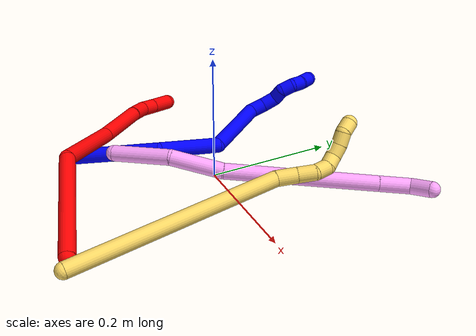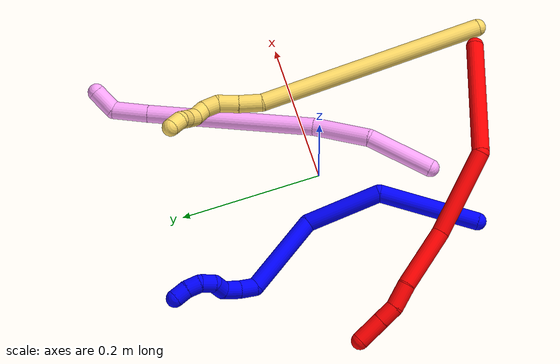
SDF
<sdf version="1.7">
 <world name="default">
  <model name="1">
   <static>0</static>
   <link name="1">
    <collision name="collision-cylinder-e_1_1_4">
     <pose>0.03858 0.059249 -0.010072 -1.73918 0.570685 -0.668755</pose>
     <geometry><cylinder><radius>0.0125</radius><length>0.142832</length></cylinder></geometry>
     <surface>
      <friction><ode><mu>1.16</mu><mu2>1.16</mu2><slip1>0</slip1><slip2>0</slip2></ode></friction>
      <contact><ode><kp>1e+06</kp><kd>1</kd><max_vel>0</max_vel><min_depth>0.001</min_depth></ode></contact>
     </surface>
    </collision>
    <visual name="visual-cylinder-e_1_1_4">
     <pose>0.03858 0.059249 -0.010072 -1.73918 0.570685 -0.668755</pose>
     <geometry><cylinder><radius>0.0125</radius><length>0.142832</length></cylinder></geometry>
     <material><ambient>0 0 1 1</ambient></material>
    </visual>
    <collision name="collision-cylinder-e_2_4_5">
     <pose>0.073314 0.167824 -0.041856 -1.98546 -0.071234 0.109124</pose>
     <geometry><cylinder><radius>0.0125</radius><length>0.108061</length></cylinder></geometry>
     <surface>
      <friction><ode><mu>1.16</mu><mu2>1.16</mu2><slip1>0</slip1><slip2>0</slip2></ode></friction>
      <contact><ode><kp>1e+06</kp><kd>1</kd><max_vel>0</max_vel><min_depth>0.001</min_depth></ode></contact>
     </surface>
    </collision>
    <visual name="visual-cylinder-e_2_4_5">
     <pose>0.073314 0.167824 -0.041856 -1.98546 -0.071234 0.109124</pose>
     <geometry><cylinder><radius>0.0125</radius><length>0.108061</length></cylinder></geometry>
     <material><ambient>0 0 1 1</ambient></material>
    </visual>
    <collision name="collision-cylinder-e_3_5_6">
     <pose>0.036352 0.267086 -0.064989 -1.59923 -0.585385 0.601286</pose>
     <geometry><cylinder><radius>0.0125</radius><length>0.119873</length></cylinder></geometry>
     <surface>
      <friction><ode><mu>1.16</mu><mu2>1.16</mu2><slip1>0</slip1><slip2>0</slip2></ode></friction>
      <contact><ode><kp>1e+06</kp><kd>1</kd><max_vel>0</max_vel><min_depth>0.001</min_depth></ode></contact>
     </surface>
    </collision>
    <visual name="visual-cylinder-e_3_5_6">
     <pose>0.036352 0.267086 -0.064989 -1.59923 -0.585385 0.601286</pose>
     <geometry><cylinder><radius>0.0125</radius><length>0.119873</length></cylinder></geometry>
     <material><ambient>0 0 1 1</ambient></material>
    </visual>
    <collision name="collision-cylinder-e_4_6_7">
     <pose>0.004294 0.329026 -0.065985 -1.53545 0.087856 -0.084808</pose>
     <geometry><cylinder><radius>0.0125</radius><length>0.024114</length></cylinder></geometry>
     <surface>
      <friction><ode><mu>1.16</mu><mu2>1.16</mu2><slip1>0</slip1><slip2>0</slip2></ode></friction>
      <contact><ode><kp>1e+06</kp><kd>1</kd><max_vel>0</max_vel><min_depth>0.001</min_depth></ode></contact>
     </surface>
    </collision>
    <visual name="visual-cylinder-e_4_6_7">
     <pose>0.004294 0.329026 -0.065985 -1.53545 0.087856 -0.084808</pose>
     <geometry><cylinder><radius>0.0125</radius><length>0.024114</length></cylinder></geometry>
     <material><ambient>0 0 1 1</ambient></material>
    </visual>
    <collision name="collision-cylinder-e_5_7_8">
     <pose>0.007818 0.352683 -0.063542 -1.39923 0.205559 -0.173183</pose>
     <geometry><cylinder><radius>0.0125</radius><length>0.024163</length></cylinder></geometry>
     <surface>
      <friction><ode><mu>1.16</mu><mu2>1.16</mu2><slip1>0</slip1><slip2>0</slip2></ode></friction>
      <contact><ode><kp>1e+06</kp><kd>1</kd><max_vel>0</max_vel><min_depth>0.001</min_depth></ode></contact>
     </surface>
    </collision>
    <visual name="visual-cylinder-e_5_7_8">
     <pose>0.007818 0.352683 -0.063542 -1.39923 0.205559 -0.173183</pose>
     <geometry><cylinder><radius>0.0125</radius><length>0.024163</length></cylinder></geometry>
     <material><ambient>0 0 1 1</ambient></material>
    </visual>
    <collision name="collision-cylinder-e_6_8_9">
     <pose>0.015301 0.370612 -0.055223 -0.783511 0.513722 -0.216171</pose>
     <geometry><cylinder><radius>0.0125</radius><length>0.02042</length></cylinder></geometry>
     <surface>
      <friction><ode><mu>1.16</mu><mu2>1.16</mu2><slip1>0</slip1><slip2>0</slip2></ode></friction>
      <contact><ode><kp>1e+06</kp><kd>1</kd><max_vel>0</max_vel><min_depth>0.001</min_depth></ode></contact>
     </surface>
    </collision>
    <visual name="visual-cylinder-e_6_8_9">
     <pose>0.015301 0.370612 -0.055223 -0.783511 0.513722 -0.216171</pose>
     <geometry><cylinder><radius>0.0125</radius><length>0.02042</length></cylinder></geometry>
     <material><ambient>0 0 1 1</ambient></material>
    </visual>
    <collision name="collision-cylinder-e_7_9_10">
     <pose>0.022918 0.386686 -0.04778 -1.45462 0.257658 -0.229601</pose>
     <geometry><cylinder><radius>0.0125</radius><length>0.020403</length></cylinder></geometry>
     <surface>
      <friction><ode><mu>1.16</mu><mu2>1.16</mu2><slip1>0</slip1><slip2>0</slip2></ode></friction>
      <contact><ode><kp>1e+06</kp><kd>1</kd><max_vel>0</max_vel><min_depth>0.001</min_depth></ode></contact>
     </surface>
    </collision>
    <visual name="visual-cylinder-e_7_9_10">
     <pose>0.022918 0.386686 -0.04778 -1.45462 0.257658 -0.229601</pose>
     <geometry><cylinder><radius>0.0125</radius><length>0.020403</length></cylinder></geometry>
     <material><ambient>0 0 1 1</ambient></material>
    </visual>
    <collision name="collision-cylinder-e_8_10_11">
     <pose>0.02429 0.406234 -0.048506 -1.7602 -0.122978 0.148705</pose>
     <geometry><cylinder><radius>0.0125</radius><length>0.020006</length></cylinder></geometry>
     <surface>
      <friction><ode><mu>1.16</mu><mu2>1.16</mu2><slip1>0</slip1><slip2>0</slip2></ode></friction>
      <contact><ode><kp>1e+06</kp><kd>1</kd><max_vel>0</max_vel><min_depth>0.001</min_depth></ode></contact>
     </surface>
    </collision>
    <visual name="visual-cylinder-e_8_10_11">
     <pose>0.02429 0.406234 -0.048506 -1.7602 -0.122978 0.148705</pose>
     <geometry><cylinder><radius>0.0125</radius><length>0.020006</length></cylinder></geometry>
     <material><ambient>0 0 1 1</ambient></material>
    </visual>
    <collision name="collision-cylinder-e_9_11_2">
     <pose>0.019365 0.425211 -0.051946 -1.73952 -0.376262 0.443686</pose>
     <geometry><cylinder><radius>0.0125</radius><length>0.020129</length></cylinder></geometry>
     <surface>
      <friction><ode><mu>1.16</mu><mu2>1.16</mu2><slip1>0</slip1><slip2>0</slip2></ode></friction>
      <contact><ode><kp>1e+06</kp><kd>1</kd><max_vel>0</max_vel><min_depth>0.001</min_depth></ode></contact>
     </surface>
    </collision>
    <visual name="visual-cylinder-e_9_11_2">
     <pose>0.019365 0.425211 -0.051946 -1.73952 -0.376262 0.443686</pose>
     <geometry><cylinder><radius>0.0125</radius><length>0.020129</length></cylinder></geometry>
     <material><ambient>0 0 1 1</ambient></material>
    </visual>
    <collision name="collision-sphere-2">
     <pose>0.015667 0.434439 -0.053518 0 -0 0</pose>
     <geometry><sphere><radius>0.0125</radius></sphere></geometry>
     <surface>
      <friction><ode><mu>1.16</mu><mu2>1.16</mu2><slip1>0</slip1><slip2>0</slip2></ode></friction>
      <contact><ode><kp>1e+06</kp><kd>1</kd><max_vel>0</max_vel><min_depth>0.001</min_depth></ode></contact>
     </surface>
    </collision>
    <visual name="visual-sphere-2">
     <pose>0.015667 0.434439 -0.053518 0 -0 0</pose>
     <geometry><sphere><radius>0.0125</radius></sphere></geometry>
     <material><ambient>0 0 1 1</ambient></material>
    </visual>
    <collision name="collision-sphere-11">
     <pose>0.023063 0.415984 -0.050375 0 -0 0</pose>
     <geometry><sphere><radius>0.0125</radius></sphere></geometry>
     <surface>
      <friction><ode><mu>1.16</mu><mu2>1.16</mu2><slip1>0</slip1><slip2>0</slip2></ode></friction>
      <contact><ode><kp>1e+06</kp><kd>1</kd><max_vel>0</max_vel><min_depth>0.001</min_depth></ode></contact>
     </surface>
    </collision>
    <visual name="visual-sphere-11">
     <pose>0.023063 0.415984 -0.050375 0 -0 0</pose>
     <geometry><sphere><radius>0.0125</radius></sphere></geometry>
     <material><ambient>0 0 1 1</ambient></material>
    </visual>
    <collision name="collision-sphere-10">
     <pose>0.025517 0.396484 -0.046637 0 -0 0</pose>
     <geometry><sphere><radius>0.0125</radius></sphere></geometry>
     <surface>
      <friction><ode><mu>1.16</mu><mu2>1.16</mu2><slip1>0</slip1><slip2>0</slip2></ode></friction>
      <contact><ode><kp>1e+06</kp><kd>1</kd><max_vel>0</max_vel><min_depth>0.001</min_depth></ode></contact>
     </surface>
    </collision>
    <visual name="visual-sphere-10">
     <pose>0.025517 0.396484 -0.046637 0 -0 0</pose>
     <geometry><sphere><radius>0.0125</radius></sphere></geometry>
     <material><ambient>0 0 1 1</ambient></material>
    </visual>
    <collision name="collision-sphere-9">
     <pose>0.020318 0.376888 -0.048923 0 -0 0</pose>
     <geometry><sphere><radius>0.0125</radius></sphere></geometry>
     <surface>
      <friction><ode><mu>1.16</mu><mu2>1.16</mu2><slip1>0</slip1><slip2>0</slip2></ode></friction>
      <contact><ode><kp>1e+06</kp><kd>1</kd><max_vel>0</max_vel><min_depth>0.001</min_depth></ode></contact>
     </surface>
    </collision>
    <visual name="visual-sphere-9">
     <pose>0.020318 0.376888 -0.048923 0 -0 0</pose>
     <geometry><sphere><radius>0.0125</radius></sphere></geometry>
     <material><ambient>0 0 1 1</ambient></material>
    </visual>
    <collision name="collision-sphere-4">
     <pose>0.077159 0.118498 -0.020144 0 -0 0</pose>
     <geometry><sphere><radius>0.0125</radius></sphere></geometry>
     <surface>
      <friction><ode><mu>1.16</mu><mu2>1.16</mu2><slip1>0</slip1><slip2>0</slip2></ode></friction>
      <contact><ode><kp>1e+06</kp><kd>1</kd><max_vel>0</max_vel><min_depth>0.001</min_depth></ode></contact>
     </surface>
    </collision>
    <visual name="visual-sphere-4">
     <pose>0.077159 0.118498 -0.020144 0 -0 0</pose>
     <geometry><sphere><radius>0.0125</radius></sphere></geometry>
     <material><ambient>0 0 1 1</ambient></material>
    </visual>
    <collision name="collision-sphere-1">
     <geometry><sphere><radius>0.0125</radius></sphere></geometry>
     <surface>
      <friction><ode><mu>1.16</mu><mu2>1.16</mu2><slip1>0</slip1><slip2>0</slip2></ode></friction>
      <contact><ode><kp>1e+06</kp><kd>1</kd><max_vel>0</max_vel><min_depth>0.001</min_depth></ode></contact>
     </surface>
    </collision>
    <visual name="visual-sphere-1">
     <geometry><sphere><radius>0.0125</radius></sphere></geometry>
     <material><ambient>0 0 1 1</ambient></material>
    </visual>
    <collision name="collision-sphere-8">
     <pose>0.010284 0.364336 -0.061522 0 -0 0</pose>
     <geometry><sphere><radius>0.0125</radius></sphere></geometry>
     <surface>
      <friction><ode><mu>1.16</mu><mu2>1.16</mu2><slip1>0</slip1><slip2>0</slip2></ode></friction>
      <contact><ode><kp>1e+06</kp><kd>1</kd><max_vel>0</max_vel><min_depth>0.001</min_depth></ode></contact>
     </surface>
    </collision>
    <visual name="visual-sphere-8">
     <pose>0.010284 0.364336 -0.061522 0 -0 0</pose>
     <geometry><sphere><radius>0.0125</radius></sphere></geometry>
     <material><ambient>0 0 1 1</ambient></material>
    </visual>
    <collision name="collision-sphere-5">
     <pose>0.069468 0.21715 -0.063569 0 -0 0</pose>
     <geometry><sphere><radius>0.0125</radius></sphere></geometry>
     <surface>
      <friction><ode><mu>1.16</mu><mu2>1.16</mu2><slip1>0</slip1><slip2>0</slip2></ode></friction>
      <contact><ode><kp>1e+06</kp><kd>1</kd><max_vel>0</max_vel><min_depth>0.001</min_depth></ode></contact>
     </surface>
    </collision>
    <visual name="visual-sphere-5">
     <pose>0.069468 0.21715 -0.063569 0 -0 0</pose>
     <geometry><sphere><radius>0.0125</radius></sphere></geometry>
     <material><ambient>0 0 1 1</ambient></material>
    </visual>
    <collision name="collision-sphere-6">
     <pose>0.003236 0.317023 -0.06641 0 -0 0</pose>
     <geometry><sphere><radius>0.0125</radius></sphere></geometry>
     <surface>
      <friction><ode><mu>1.16</mu><mu2>1.16</mu2><slip1>0</slip1><slip2>0</slip2></ode></friction>
      <contact><ode><kp>1e+06</kp><kd>1</kd><max_vel>0</max_vel><min_depth>0.001</min_depth></ode></contact>
     </surface>
    </collision>
    <visual name="visual-sphere-6">
     <pose>0.003236 0.317023 -0.06641 0 -0 0</pose>
     <geometry><sphere><radius>0.0125</radius></sphere></geometry>
     <material><ambient>0 0 1 1</ambient></material>
    </visual>
    <collision name="collision-sphere-7">
     <pose>0.005352 0.341029 -0.065561 0 -0 0</pose>
     <geometry><sphere><radius>0.0125</radius></sphere></geometry>
     <surface>
      <friction><ode><mu>1.16</mu><mu2>1.16</mu2><slip1>0</slip1><slip2>0</slip2></ode></friction>
      <contact><ode><kp>1e+06</kp><kd>1</kd><max_vel>0</max_vel><min_depth>0.001</min_depth></ode></contact>
     </surface>
    </collision>
    <visual name="visual-sphere-7">
     <pose>0.005352 0.341029 -0.065561 0 -0 0</pose>
     <geometry><sphere><radius>0.0125</radius></sphere></geometry>
     <material><ambient>0 0 1 1</ambient></material>
    </visual>
    <inertial>
     <pose>0.039477 0.214427 -0.041994 0 -0 0</pose>
     <mass>0.5</mass>
     <inertia>
      <ixx>0.000337</ixx>
      <ixy>0</ixy>
      <ixz>0</ixz>
      <iyy>3.7e-05</iyy>
      <iyz>0</iyz>
      <izz>-0.000488</izz>
     </inertia>
    </inertial>
   </link>
   <pose>-0.136186 -0.18809 0.011496 0.233326 -0.165967 -0.002882</pose>
  </model>
  <model name="2">
   <static>0</static>
   <link name="2">
    <collision name="collision-cylinder-e_1_1_4">
     <pose>-0.068712 0.053725 -0.033004 -2.12168 -0.828323 1.33224</pose>
     <geometry><cylinder><radius>0.0125</radius><length>0.186516</length></cylinder></geometry>
     <surface>
      <friction><ode><mu>1.16</mu><mu2>1.16</mu2><slip1>0</slip1><slip2>0</slip2></ode></friction>
      <contact><ode><kp>1e+06</kp><kd>1</kd><max_vel>0</max_vel><min_depth>0.001</min_depth></ode></contact>
     </surface>
    </collision>
    <visual name="visual-cylinder-e_1_1_4">
     <pose>-0.068712 0.053725 -0.033004 -2.12168 -0.828323 1.33224</pose>
     <geometry><cylinder><radius>0.0125</radius><length>0.186516</length></cylinder></geometry>
     <material><ambient>1 0 0 1</ambient></material>
    </visual>
    <collision name="collision-cylinder-e_2_4_5">
     <pose>-0.16072 0.130274 -0.119077 -2.73542 -0.383307 1.51135</pose>
     <geometry><cylinder><radius>0.0125</radius><length>0.124577</length></cylinder></geometry>
     <surface>
      <friction><ode><mu>1.16</mu><mu2>1.16</mu2><slip1>0</slip1><slip2>0</slip2></ode></friction>
      <contact><ode><kp>1e+06</kp><kd>1</kd><max_vel>0</max_vel><min_depth>0.001</min_depth></ode></contact>
     </surface>
    </collision>
    <visual name="visual-cylinder-e_2_4_5">
     <pose>-0.16072 0.130274 -0.119077 -2.73542 -0.383307 1.51135</pose>
     <geometry><cylinder><radius>0.0125</radius><length>0.124577</length></cylinder></geometry>
     <material><ambient>1 0 0 1</ambient></material>
    </visual>
    <collision name="collision-cylinder-e_3_5_6">
     <pose>-0.19691 0.176327 -0.207307 -2.55779 -0.296939 0.923713</pose>
     <geometry><cylinder><radius>0.0125</radius><length>0.088142</length></cylinder></geometry>
     <surface>
      <friction><ode><mu>1.16</mu><mu2>1.16</mu2><slip1>0</slip1><slip2>0</slip2></ode></friction>
      <contact><ode><kp>1e+06</kp><kd>1</kd><max_vel>0</max_vel><min_depth>0.001</min_depth></ode></contact>
     </surface>
    </collision>
    <visual name="visual-cylinder-e_3_5_6">
     <pose>-0.19691 0.176327 -0.207307 -2.55779 -0.296939 0.923713</pose>
     <geometry><cylinder><radius>0.0125</radius><length>0.088142</length></cylinder></geometry>
     <material><ambient>1 0 0 1</ambient></material>
    </visual>
    <collision name="collision-cylinder-e_4_6_7">
     <pose>-0.21597 0.206114 -0.257503 -2.73023 -0.359576 1.43329</pose>
     <geometry><cylinder><radius>0.0125</radius><length>0.035043</length></cylinder></geometry>
     <surface>
      <friction><ode><mu>1.16</mu><mu2>1.16</mu2><slip1>0</slip1><slip2>0</slip2></ode></friction>
      <contact><ode><kp>1e+06</kp><kd>1</kd><max_vel>0</max_vel><min_depth>0.001</min_depth></ode></contact>
     </surface>
    </collision>
    <visual name="visual-cylinder-e_4_6_7">
     <pose>-0.21597 0.206114 -0.257503 -2.73023 -0.359576 1.43329</pose>
     <geometry><cylinder><radius>0.0125</radius><length>0.035043</length></cylinder></geometry>
     <material><ambient>1 0 0 1</ambient></material>
    </visual>
    <collision name="collision-cylinder-e_5_7_8">
     <pose>-0.222824 0.218227 -0.284412 -2.70415 -0.052479 0.235063</pose>
     <geometry><cylinder><radius>0.0125</radius><length>0.026258</length></cylinder></geometry>
     <surface>
      <friction><ode><mu>1.16</mu><mu2>1.16</mu2><slip1>0</slip1><slip2>0</slip2></ode></friction>
      <contact><ode><kp>1e+06</kp><kd>1</kd><max_vel>0</max_vel><min_depth>0.001</min_depth></ode></contact>
     </surface>
    </collision>
    <visual name="visual-cylinder-e_5_7_8">
     <pose>-0.222824 0.218227 -0.284412 -2.70415 -0.052479 0.235063</pose>
     <geometry><cylinder><radius>0.0125</radius><length>0.026258</length></cylinder></geometry>
     <material><ambient>1 0 0 1</ambient></material>
    </visual>
    <collision name="collision-cylinder-e_6_8_2">
     <pose>-0.224581 0.23233 -0.31404 -2.69279 -0.054157 0.23623</pose>
     <geometry><cylinder><radius>0.0125</radius><length>0.039464</length></cylinder></geometry>
     <surface>
      <friction><ode><mu>1.16</mu><mu2>1.16</mu2><slip1>0</slip1><slip2>0</slip2></ode></friction>
      <contact><ode><kp>1e+06</kp><kd>1</kd><max_vel>0</max_vel><min_depth>0.001</min_depth></ode></contact>
     </surface>
    </collision>
    <visual name="visual-cylinder-e_6_8_2">
     <pose>-0.224581 0.23233 -0.31404 -2.69279 -0.054157 0.23623</pose>
     <geometry><cylinder><radius>0.0125</radius><length>0.039464</length></cylinder></geometry>
     <material><ambient>1 0 0 1</ambient></material>
    </visual>
    <collision name="collision-sphere-2">
     <pose>-0.225649 0.240878 -0.331792 0 -0 0</pose>
     <geometry><sphere><radius>0.0125</radius></sphere></geometry>
     <surface>
      <friction><ode><mu>1.16</mu><mu2>1.16</mu2><slip1>0</slip1><slip2>0</slip2></ode></friction>
      <contact><ode><kp>1e+06</kp><kd>1</kd><max_vel>0</max_vel><min_depth>0.001</min_depth></ode></contact>
     </surface>
    </collision>
    <visual name="visual-sphere-2">
     <pose>-0.225649 0.240878 -0.331792 0 -0 0</pose>
     <geometry><sphere><radius>0.0125</radius></sphere></geometry>
     <material><ambient>1 0 0 1</ambient></material>
    </visual>
    <collision name="collision-sphere-4">
     <pose>-0.137424 0.10745 -0.066008 0 -0 0</pose>
     <geometry><sphere><radius>0.0125</radius></sphere></geometry>
     <surface>
      <friction><ode><mu>1.16</mu><mu2>1.16</mu2><slip1>0</slip1><slip2>0</slip2></ode></friction>
      <contact><ode><kp>1e+06</kp><kd>1</kd><max_vel>0</max_vel><min_depth>0.001</min_depth></ode></contact>
     </surface>
    </collision>
    <visual name="visual-sphere-4">
     <pose>-0.137424 0.10745 -0.066008 0 -0 0</pose>
     <geometry><sphere><radius>0.0125</radius></sphere></geometry>
     <material><ambient>1 0 0 1</ambient></material>
    </visual>
    <collision name="collision-sphere-1">
     <geometry><sphere><radius>0.0125</radius></sphere></geometry>
     <surface>
      <friction><ode><mu>1.16</mu><mu2>1.16</mu2><slip1>0</slip1><slip2>0</slip2></ode></friction>
      <contact><ode><kp>1e+06</kp><kd>1</kd><max_vel>0</max_vel><min_depth>0.001</min_depth></ode></contact>
     </surface>
    </collision>
    <visual name="visual-sphere-1">
     <geometry><sphere><radius>0.0125</radius></sphere></geometry>
     <material><ambient>1 0 0 1</ambient></material>
    </visual>
    <collision name="collision-sphere-8">
     <pose>-0.223513 0.223781 -0.296289 0 -0 0</pose>
     <geometry><sphere><radius>0.0125</radius></sphere></geometry>
     <surface>
      <friction><ode><mu>1.16</mu><mu2>1.16</mu2><slip1>0</slip1><slip2>0</slip2></ode></friction>
      <contact><ode><kp>1e+06</kp><kd>1</kd><max_vel>0</max_vel><min_depth>0.001</min_depth></ode></contact>
     </surface>
    </collision>
    <visual name="visual-sphere-8">
     <pose>-0.223513 0.223781 -0.296289 0 -0 0</pose>
     <geometry><sphere><radius>0.0125</radius></sphere></geometry>
     <material><ambient>1 0 0 1</ambient></material>
    </visual>
    <collision name="collision-sphere-5">
     <pose>-0.184015 0.153098 -0.172145 0 -0 0</pose>
     <geometry><sphere><radius>0.0125</radius></sphere></geometry>
     <surface>
      <friction><ode><mu>1.16</mu><mu2>1.16</mu2><slip1>0</slip1><slip2>0</slip2></ode></friction>
      <contact><ode><kp>1e+06</kp><kd>1</kd><max_vel>0</max_vel><min_depth>0.001</min_depth></ode></contact>
     </surface>
    </collision>
    <visual name="visual-sphere-5">
     <pose>-0.184015 0.153098 -0.172145 0 -0 0</pose>
     <geometry><sphere><radius>0.0125</radius></sphere></geometry>
     <material><ambient>1 0 0 1</ambient></material>
    </visual>
    <collision name="collision-sphere-6">
     <pose>-0.209805 0.199556 -0.24247 0 -0 0</pose>
     <geometry><sphere><radius>0.0125</radius></sphere></geometry>
     <surface>
      <friction><ode><mu>1.16</mu><mu2>1.16</mu2><slip1>0</slip1><slip2>0</slip2></ode></friction>
      <contact><ode><kp>1e+06</kp><kd>1</kd><max_vel>0</max_vel><min_depth>0.001</min_depth></ode></contact>
     </surface>
    </collision>
    <visual name="visual-sphere-6">
     <pose>-0.209805 0.199556 -0.24247 0 -0 0</pose>
     <geometry><sphere><radius>0.0125</radius></sphere></geometry>
     <material><ambient>1 0 0 1</ambient></material>
    </visual>
    <collision name="collision-sphere-7">
     <pose>-0.222136 0.212673 -0.272536 0 -0 0</pose>
     <geometry><sphere><radius>0.0125</radius></sphere></geometry>
     <surface>
      <friction><ode><mu>1.16</mu><mu2>1.16</mu2><slip1>0</slip1><slip2>0</slip2></ode></friction>
      <contact><ode><kp>1e+06</kp><kd>1</kd><max_vel>0</max_vel><min_depth>0.001</min_depth></ode></contact>
     </surface>
    </collision>
    <visual name="visual-sphere-7">
     <pose>-0.222136 0.212673 -0.272536 0 -0 0</pose>
     <geometry><sphere><radius>0.0125</radius></sphere></geometry>
     <material><ambient>1 0 0 1</ambient></material>
    </visual>
    <inertial>
     <pose>-0.144952 0.127827 -0.136295 0 -0 0</pose>
     <mass>0.5</mass>
     <inertia><ixx>0.00069</ixx><ixy>0</ixy><ixz>0</ixz><iyy>0.000837</iyy><iyz>0</iyz><izz>4.6e-05</izz></inertia>
    </inertial>
   </link>
   <pose>0.114282 -0.273305 0.012436 0.946328 -0.010487 0.384097</pose>
  </model>
  <model name="4">
   <static>0</static>
   <link name="4">
    <collision name="collision-cylinder-e_1_1_4">
     <pose>0.031197 0.032382 0.013978 -1.16329 0.724184 -0.488197</pose>
     <geometry><cylinder><radius>0.0125</radius><length>0.094176</length></cylinder></geometry>
     <surface>
      <friction><ode><mu>1.16</mu><mu2>1.16</mu2><slip1>0</slip1><slip2>0</slip2></ode></friction>
      <contact><ode><kp>1e+06</kp><kd>1</kd><max_vel>0</max_vel><min_depth>0.001</min_depth></ode></contact>
     </surface>
    </collision>
    <visual name="visual-cylinder-e_1_1_4">
     <pose>0.031197 0.032382 0.013978 -1.16329 0.724184 -0.488197</pose>
     <geometry><cylinder><radius>0.0125</radius><length>0.094176</length></cylinder></geometry>
     <material><ambient>1 0.65098 0.996078 1</ambient></material>
    </visual>
    <collision name="collision-cylinder-e_2_4_5">
     <pose>0.086676 0.097834 0.027105 -1.59656 0.633214 -0.648622</pose>
     <geometry><cylinder><radius>0.0125</radius><length>0.082072</length></cylinder></geometry>
     <surface>
      <friction><ode><mu>1.16</mu><mu2>1.16</mu2><slip1>0</slip1><slip2>0</slip2></ode></friction>
      <contact><ode><kp>1e+06</kp><kd>1</kd><max_vel>0</max_vel><min_depth>0.001</min_depth></ode></contact>
     </surface>
    </collision>
    <visual name="visual-cylinder-e_2_4_5">
     <pose>0.086676 0.097834 0.027105 -1.59656 0.633214 -0.648622</pose>
     <geometry><cylinder><radius>0.0125</radius><length>0.082072</length></cylinder></geometry>
     <material><ambient>1 0.65098 0.996078 1</ambient></material>
    </visual>
    <collision name="collision-cylinder-e_3_5_6">
     <pose>0.163504 0.237349 0.03333 -1.5044 0.457667 -0.429169</pose>
     <geometry><cylinder><radius>0.0125</radius><length>0.237837</length></cylinder></geometry>
     <surface>
      <friction><ode><mu>1.16</mu><mu2>1.16</mu2><slip1>0</slip1><slip2>0</slip2></ode></friction>
      <contact><ode><kp>1e+06</kp><kd>1</kd><max_vel>0</max_vel><min_depth>0.001</min_depth></ode></contact>
     </surface>
    </collision>
    <visual name="visual-cylinder-e_3_5_6">
     <pose>0.163504 0.237349 0.03333 -1.5044 0.457667 -0.429169</pose>
     <geometry><cylinder><radius>0.0125</radius><length>0.237837</length></cylinder></geometry>
     <material><ambient>1 0.65098 0.996078 1</ambient></material>
    </visual>
    <collision name="collision-cylinder-e_4_6_7">
     <pose>0.22768 0.366272 0.04237 -1.48376 0.475972 -0.437559</pose>
     <geometry><cylinder><radius>0.0125</radius><length>0.050771</length></cylinder></geometry>
     <surface>
      <friction><ode><mu>1.16</mu><mu2>1.16</mu2><slip1>0</slip1><slip2>0</slip2></ode></friction>
      <contact><ode><kp>1e+06</kp><kd>1</kd><max_vel>0</max_vel><min_depth>0.001</min_depth></ode></contact>
     </surface>
    </collision>
    <visual name="visual-cylinder-e_4_6_7">
     <pose>0.22768 0.366272 0.04237 -1.48376 0.475972 -0.437559</pose>
     <geometry><cylinder><radius>0.0125</radius><length>0.050771</length></cylinder></geometry>
     <material><ambient>1 0.65098 0.996078 1</ambient></material>
    </visual>
    <collision name="collision-cylinder-e_5_7_2">
     <pose>0.253711 0.395846 0.05148 -0.781646 0.96041 -0.422803</pose>
     <geometry><cylinder><radius>0.0125</radius><length>0.035145</length></cylinder></geometry>
     <surface>
      <friction><ode><mu>1.16</mu><mu2>1.16</mu2><slip1>0</slip1><slip2>0</slip2></ode></friction>
      <contact><ode><kp>1e+06</kp><kd>1</kd><max_vel>0</max_vel><min_depth>0.001</min_depth></ode></contact>
     </surface>
    </collision>
    <visual name="visual-cylinder-e_5_7_2">
     <pose>0.253711 0.395846 0.05148 -0.781646 0.96041 -0.422803</pose>
     <geometry><cylinder><radius>0.0125</radius><length>0.035145</length></cylinder></geometry>
     <material><ambient>1 0.65098 0.996078 1</ambient></material>
    </visual>
    <collision name="collision-sphere-2">
     <pose>0.26811 0.402941 0.058628 0 -0 0</pose>
     <geometry><sphere><radius>0.0125</radius></sphere></geometry>
     <surface>
      <friction><ode><mu>1.16</mu><mu2>1.16</mu2><slip1>0</slip1><slip2>0</slip2></ode></friction>
      <contact><ode><kp>1e+06</kp><kd>1</kd><max_vel>0</max_vel><min_depth>0.001</min_depth></ode></contact>
     </surface>
    </collision>
    <visual name="visual-sphere-2">
     <pose>0.26811 0.402941 0.058628 0 -0 0</pose>
     <geometry><sphere><radius>0.0125</radius></sphere></geometry>
     <material><ambient>1 0.65098 0.996078 1</ambient></material>
    </visual>
    <collision name="collision-sphere-7">
     <pose>0.239312 0.38875 0.044331 0 -0 0</pose>
     <geometry><sphere><radius>0.0125</radius></sphere></geometry>
     <surface>
      <friction><ode><mu>1.16</mu><mu2>1.16</mu2><slip1>0</slip1><slip2>0</slip2></ode></friction>
      <contact><ode><kp>1e+06</kp><kd>1</kd><max_vel>0</max_vel><min_depth>0.001</min_depth></ode></contact>
     </surface>
    </collision>
    <visual name="visual-sphere-7">
     <pose>0.239312 0.38875 0.044331 0 -0 0</pose>
     <geometry><sphere><radius>0.0125</radius></sphere></geometry>
     <material><ambient>1 0.65098 0.996078 1</ambient></material>
    </visual>
    <collision name="collision-sphere-6">
     <pose>0.216049 0.343794 0.040408 0 -0 0</pose>
     <geometry><sphere><radius>0.0125</radius></sphere></geometry>
     <surface>
      <friction><ode><mu>1.16</mu><mu2>1.16</mu2><slip1>0</slip1><slip2>0</slip2></ode></friction>
      <contact><ode><kp>1e+06</kp><kd>1</kd><max_vel>0</max_vel><min_depth>0.001</min_depth></ode></contact>
     </surface>
    </collision>
    <visual name="visual-sphere-6">
     <pose>0.216049 0.343794 0.040408 0 -0 0</pose>
     <geometry><sphere><radius>0.0125</radius></sphere></geometry>
     <material><ambient>1 0.65098 0.996078 1</ambient></material>
    </visual>
    <collision name="collision-sphere-5">
     <pose>0.110959 0.130904 0.026252 0 -0 0</pose>
     <geometry><sphere><radius>0.0125</radius></sphere></geometry>
     <surface>
      <friction><ode><mu>1.16</mu><mu2>1.16</mu2><slip1>0</slip1><slip2>0</slip2></ode></friction>
      <contact><ode><kp>1e+06</kp><kd>1</kd><max_vel>0</max_vel><min_depth>0.001</min_depth></ode></contact>
     </surface>
    </collision>
    <visual name="visual-sphere-5">
     <pose>0.110959 0.130904 0.026252 0 -0 0</pose>
     <geometry><sphere><radius>0.0125</radius></sphere></geometry>
     <material><ambient>1 0.65098 0.996078 1</ambient></material>
    </visual>
    <collision name="collision-sphere-1">
     <geometry><sphere><radius>0.0125</radius></sphere></geometry>
     <surface>
      <friction><ode><mu>1.16</mu><mu2>1.16</mu2><slip1>0</slip1><slip2>0</slip2></ode></friction>
      <contact><ode><kp>1e+06</kp><kd>1</kd><max_vel>0</max_vel><min_depth>0.001</min_depth></ode></contact>
     </surface>
    </collision>
    <visual name="visual-sphere-1">
     <geometry><sphere><radius>0.0125</radius></sphere></geometry>
     <material><ambient>1 0.65098 0.996078 1</ambient></material>
    </visual>
    <collision name="collision-sphere-4">
     <pose>0.062394 0.064765 0.027957 0 -0 0</pose>
     <geometry><sphere><radius>0.0125</radius></sphere></geometry>
     <surface>
      <friction><ode><mu>1.16</mu><mu2>1.16</mu2><slip1>0</slip1><slip2>0</slip2></ode></friction>
      <contact><ode><kp>1e+06</kp><kd>1</kd><max_vel>0</max_vel><min_depth>0.001</min_depth></ode></contact>
     </surface>
    </collision>
    <visual name="visual-sphere-4">
     <pose>0.062394 0.064765 0.027957 0 -0 0</pose>
     <geometry><sphere><radius>0.0125</radius></sphere></geometry>
     <material><ambient>1 0.65098 0.996078 1</ambient></material>
    </visual>
    <inertial>
     <pose>0.13883 0.200074 0.030857 0 -0 0</pose>
     <mass>0.5</mass>
     <inertia>
      <ixx>0.000558</ixx>
      <ixy>0</ixy>
      <ixz>0</ixz>
      <iyy>-0.0001</iyy>
      <iyz>0</iyz>
      <izz>-0.001698</izz>
     </inertia>
    </inertial>
   </link>
   <pose>-0.0538 -0.145124 0.050765 -0.09366 0.193758 0.004888</pose>
  </model>
  <model name="5">
   <static>0</static>
   <link name="5">
    <collision name="collision-cylinder-e_1_1_4">
     <pose>-0.016053 0.150055 -0.073453 -2.02602 -0.09579 0.153357</pose>
     <geometry><cylinder><radius>0.0125</radius><length>0.335676</length></cylinder></geometry>
     <surface>
      <friction><ode><mu>1.16</mu><mu2>1.16</mu2><slip1>0</slip1><slip2>0</slip2></ode></friction>
      <contact><ode><kp>1e+06</kp><kd>1</kd><max_vel>0</max_vel><min_depth>0.001</min_depth></ode></contact>
     </surface>
    </collision>
    <visual name="visual-cylinder-e_1_1_4">
     <pose>-0.016053 0.150055 -0.073453 -2.02602 -0.09579 0.153357</pose>
     <geometry><cylinder><radius>0.0125</radius><length>0.335676</length></cylinder></geometry>
     <material><ambient>1 0.858824 0.4 1</ambient></material>
    </visual>
    <collision name="collision-cylinder-e_2_4_5">
     <pose>-0.028808 0.313677 -0.155615 -2.14147 0.201757 -0.366363</pose>
     <geometry><cylinder><radius>0.0125</radius><length>0.03291</length></cylinder></geometry>
     <surface>
      <friction><ode><mu>1.16</mu><mu2>1.16</mu2><slip1>0</slip1><slip2>0</slip2></ode></friction>
      <contact><ode><kp>1e+06</kp><kd>1</kd><max_vel>0</max_vel><min_depth>0.001</min_depth></ode></contact>
     </surface>
    </collision>
    <visual name="visual-cylinder-e_2_4_5">
     <pose>-0.028808 0.313677 -0.155615 -2.14147 0.201757 -0.366363</pose>
     <geometry><cylinder><radius>0.0125</radius><length>0.03291</length></cylinder></geometry>
     <material><ambient>1 0.858824 0.4 1</ambient></material>
    </visual>
    <collision name="collision-cylinder-e_3_5_6">
     <pose>-0.021502 0.339023 -0.171553 -2.12123 0.282317 -0.497364</pose>
     <geometry><cylinder><radius>0.0125</radius><length>0.02878</length></cylinder></geometry>
     <surface>
      <friction><ode><mu>1.16</mu><mu2>1.16</mu2><slip1>0</slip1><slip2>0</slip2></ode></friction>
      <contact><ode><kp>1e+06</kp><kd>1</kd><max_vel>0</max_vel><min_depth>0.001</min_depth></ode></contact>
     </surface>
    </collision>
    <visual name="visual-cylinder-e_3_5_6">
     <pose>-0.021502 0.339023 -0.171553 -2.12123 0.282317 -0.497364</pose>
     <geometry><cylinder><radius>0.0125</radius><length>0.02878</length></cylinder></geometry>
     <material><ambient>1 0.858824 0.4 1</ambient></material>
    </visual>
    <collision name="collision-cylinder-e_4_6_7">
     <pose>-0.019088 0.360582 -0.183588 -2.02753 -0.145393 0.232798</pose>
     <geometry><cylinder><radius>0.0125</radius><length>0.022027</length></cylinder></geometry>
     <surface>
      <friction><ode><mu>1.16</mu><mu2>1.16</mu2><slip1>0</slip1><slip2>0</slip2></ode></friction>
      <contact><ode><kp>1e+06</kp><kd>1</kd><max_vel>0</max_vel><min_depth>0.001</min_depth></ode></contact>
     </surface>
    </collision>
    <visual name="visual-cylinder-e_4_6_7">
     <pose>-0.019088 0.360582 -0.183588 -2.02753 -0.145393 0.232798</pose>
     <geometry><cylinder><radius>0.0125</radius><length>0.022027</length></cylinder></geometry>
     <material><ambient>1 0.858824 0.4 1</ambient></material>
    </visual>
    <collision name="collision-cylinder-e_5_7_8">
     <pose>-0.025303 0.379565 -0.18834 -1.56499 -0.46512 0.462522</pose>
     <geometry><cylinder><radius>0.0125</radius><length>0.020593</length></cylinder></geometry>
     <surface>
      <friction><ode><mu>1.16</mu><mu2>1.16</mu2><slip1>0</slip1><slip2>0</slip2></ode></friction>
      <contact><ode><kp>1e+06</kp><kd>1</kd><max_vel>0</max_vel><min_depth>0.001</min_depth></ode></contact>
     </surface>
    </collision>
    <visual name="visual-cylinder-e_5_7_8">
     <pose>-0.025303 0.379565 -0.18834 -1.56499 -0.46512 0.462522</pose>
     <geometry><cylinder><radius>0.0125</radius><length>0.020593</length></cylinder></geometry>
     <material><ambient>1 0.858824 0.4 1</ambient></material>
    </visual>
    <collision name="collision-cylinder-e_6_8_9">
     <pose>-0.030955 0.398267 -0.18533 -1.26907 -0.103548 0.076251</pose>
     <geometry><cylinder><radius>0.0125</radius><length>0.020004</length></cylinder></geometry>
     <surface>
      <friction><ode><mu>1.16</mu><mu2>1.16</mu2><slip1>0</slip1><slip2>0</slip2></ode></friction>
      <contact><ode><kp>1e+06</kp><kd>1</kd><max_vel>0</max_vel><min_depth>0.001</min_depth></ode></contact>
     </surface>
    </collision>
    <visual name="visual-cylinder-e_6_8_9">
     <pose>-0.030955 0.398267 -0.18533 -1.26907 -0.103548 0.076251</pose>
     <geometry><cylinder><radius>0.0125</radius><length>0.020004</length></cylinder></geometry>
     <material><ambient>1 0.858824 0.4 1</ambient></material>
    </visual>
    <collision name="collision-cylinder-e_7_9_10">
     <pose>-0.033147 0.416448 -0.177546 -1.06327 -0.116054 0.068303</pose>
     <geometry><cylinder><radius>0.0125</radius><length>0.020004</length></cylinder></geometry>
     <surface>
      <friction><ode><mu>1.16</mu><mu2>1.16</mu2><slip1>0</slip1><slip2>0</slip2></ode></friction>
      <contact><ode><kp>1e+06</kp><kd>1</kd><max_vel>0</max_vel><min_depth>0.001</min_depth></ode></contact>
     </surface>
    </collision>
    <visual name="visual-cylinder-e_7_9_10">
     <pose>-0.033147 0.416448 -0.177546 -1.06327 -0.116054 0.068303</pose>
     <geometry><cylinder><radius>0.0125</radius><length>0.020004</length></cylinder></geometry>
     <material><ambient>1 0.858824 0.4 1</ambient></material>
    </visual>
    <collision name="collision-cylinder-e_8_10_2">
     <pose>-0.038354 0.434275 -0.172943 -1.5955 -0.416739 0.426852</pose>
     <geometry><cylinder><radius>0.0125</radius><length>0.020005</length></cylinder></geometry>
     <surface>
      <friction><ode><mu>1.16</mu><mu2>1.16</mu2><slip1>0</slip1><slip2>0</slip2></ode></friction>
      <contact><ode><kp>1e+06</kp><kd>1</kd><max_vel>0</max_vel><min_depth>0.001</min_depth></ode></contact>
     </surface>
    </collision>
    <visual name="visual-cylinder-e_8_10_2">
     <pose>-0.038354 0.434275 -0.172943 -1.5955 -0.416739 0.426852</pose>
     <geometry><cylinder><radius>0.0125</radius><length>0.020005</length></cylinder></geometry>
     <material><ambient>1 0.858824 0.4 1</ambient></material>
    </visual>
    <collision name="collision-sphere-2">
     <pose>-0.042403 0.443418 -0.173169 0 -0 0</pose>
     <geometry><sphere><radius>0.0125</radius></sphere></geometry>
     <surface>
      <friction><ode><mu>1.16</mu><mu2>1.16</mu2><slip1>0</slip1><slip2>0</slip2></ode></friction>
      <contact><ode><kp>1e+06</kp><kd>1</kd><max_vel>0</max_vel><min_depth>0.001</min_depth></ode></contact>
     </surface>
    </collision>
    <visual name="visual-sphere-2">
     <pose>-0.042403 0.443418 -0.173169 0 -0 0</pose>
     <geometry><sphere><radius>0.0125</radius></sphere></geometry>
     <material><ambient>1 0.858824 0.4 1</ambient></material>
    </visual>
    <collision name="collision-sphere-10">
     <pose>-0.034305 0.425131 -0.172717 0 -0 0</pose>
     <geometry><sphere><radius>0.0125</radius></sphere></geometry>
     <surface>
      <friction><ode><mu>1.16</mu><mu2>1.16</mu2><slip1>0</slip1><slip2>0</slip2></ode></friction>
      <contact><ode><kp>1e+06</kp><kd>1</kd><max_vel>0</max_vel><min_depth>0.001</min_depth></ode></contact>
     </surface>
    </collision>
    <visual name="visual-sphere-10">
     <pose>-0.034305 0.425131 -0.172717 0 -0 0</pose>
     <geometry><sphere><radius>0.0125</radius></sphere></geometry>
     <material><ambient>1 0.858824 0.4 1</ambient></material>
    </visual>
    <collision name="collision-sphere-9">
     <pose>-0.031989 0.407766 -0.182374 0 -0 0</pose>
     <geometry><sphere><radius>0.0125</radius></sphere></geometry>
     <surface>
      <friction><ode><mu>1.16</mu><mu2>1.16</mu2><slip1>0</slip1><slip2>0</slip2></ode></friction>
      <contact><ode><kp>1e+06</kp><kd>1</kd><max_vel>0</max_vel><min_depth>0.001</min_depth></ode></contact>
     </surface>
    </collision>
    <visual name="visual-sphere-9">
     <pose>-0.031989 0.407766 -0.182374 0 -0 0</pose>
     <geometry><sphere><radius>0.0125</radius></sphere></geometry>
     <material><ambient>1 0.858824 0.4 1</ambient></material>
    </visual>
    <collision name="collision-sphere-4">
     <pose>-0.032105 0.30011 -0.146907 0 -0 0</pose>
     <geometry><sphere><radius>0.0125</radius></sphere></geometry>
     <surface>
      <friction><ode><mu>1.16</mu><mu2>1.16</mu2><slip1>0</slip1><slip2>0</slip2></ode></friction>
      <contact><ode><kp>1e+06</kp><kd>1</kd><max_vel>0</max_vel><min_depth>0.001</min_depth></ode></contact>
     </surface>
    </collision>
    <visual name="visual-sphere-4">
     <pose>-0.032105 0.30011 -0.146907 0 -0 0</pose>
     <geometry><sphere><radius>0.0125</radius></sphere></geometry>
     <material><ambient>1 0.858824 0.4 1</ambient></material>
    </visual>
    <collision name="collision-sphere-1">
     <geometry><sphere><radius>0.0125</radius></sphere></geometry>
     <surface>
      <friction><ode><mu>1.16</mu><mu2>1.16</mu2><slip1>0</slip1><slip2>0</slip2></ode></friction>
      <contact><ode><kp>1e+06</kp><kd>1</kd><max_vel>0</max_vel><min_depth>0.001</min_depth></ode></contact>
     </surface>
    </collision>
    <visual name="visual-sphere-1">
     <geometry><sphere><radius>0.0125</radius></sphere></geometry>
     <material><ambient>1 0.858824 0.4 1</ambient></material>
    </visual>
    <collision name="collision-sphere-8">
     <pose>-0.029921 0.388768 -0.188287 0 -0 0</pose>
     <geometry><sphere><radius>0.0125</radius></sphere></geometry>
     <surface>
      <friction><ode><mu>1.16</mu><mu2>1.16</mu2><slip1>0</slip1><slip2>0</slip2></ode></friction>
      <contact><ode><kp>1e+06</kp><kd>1</kd><max_vel>0</max_vel><min_depth>0.001</min_depth></ode></contact>
     </surface>
    </collision>
    <visual name="visual-sphere-8">
     <pose>-0.029921 0.388768 -0.188287 0 -0 0</pose>
     <geometry><sphere><radius>0.0125</radius></sphere></geometry>
     <material><ambient>1 0.858824 0.4 1</ambient></material>
    </visual>
    <collision name="collision-sphere-5">
     <pose>-0.02551 0.327244 -0.164324 0 -0 0</pose>
     <geometry><sphere><radius>0.0125</radius></sphere></geometry>
     <surface>
      <friction><ode><mu>1.16</mu><mu2>1.16</mu2><slip1>0</slip1><slip2>0</slip2></ode></friction>
      <contact><ode><kp>1e+06</kp><kd>1</kd><max_vel>0</max_vel><min_depth>0.001</min_depth></ode></contact>
     </surface>
    </collision>
    <visual name="visual-sphere-5">
     <pose>-0.02551 0.327244 -0.164324 0 -0 0</pose>
     <geometry><sphere><radius>0.0125</radius></sphere></geometry>
     <material><ambient>1 0.858824 0.4 1</ambient></material>
    </visual>
    <collision name="collision-sphere-6">
     <pose>-0.017493 0.350802 -0.178782 0 -0 0</pose>
     <geometry><sphere><radius>0.0125</radius></sphere></geometry>
     <surface>
      <friction><ode><mu>1.16</mu><mu2>1.16</mu2><slip1>0</slip1><slip2>0</slip2></ode></friction>
      <contact><ode><kp>1e+06</kp><kd>1</kd><max_vel>0</max_vel><min_depth>0.001</min_depth></ode></contact>
     </surface>
    </collision>
    <visual name="visual-sphere-6">
     <pose>-0.017493 0.350802 -0.178782 0 -0 0</pose>
     <geometry><sphere><radius>0.0125</radius></sphere></geometry>
     <material><ambient>1 0.858824 0.4 1</ambient></material>
    </visual>
    <collision name="collision-sphere-7">
     <pose>-0.020684 0.370363 -0.188394 0 -0 0</pose>
     <geometry><sphere><radius>0.0125</radius></sphere></geometry>
     <surface>
      <friction><ode><mu>1.16</mu><mu2>1.16</mu2><slip1>0</slip1><slip2>0</slip2></ode></friction>
      <contact><ode><kp>1e+06</kp><kd>1</kd><max_vel>0</max_vel><min_depth>0.001</min_depth></ode></contact>
     </surface>
    </collision>
    <visual name="visual-sphere-7">
     <pose>-0.020684 0.370363 -0.188394 0 -0 0</pose>
     <geometry><sphere><radius>0.0125</radius></sphere></geometry>
     <material><ambient>1 0.858824 0.4 1</ambient></material>
    </visual>
    <inertial>
     <pose>-0.019893 0.222389 -0.106713 0 -0 0</pose>
     <mass>0.5</mass>
     <inertia>
      <ixx>0.003604</ixx>
      <ixy>0</ixy>
      <ixz>0</ixz>
      <iyy>-0.000821</iyy>
      <iyz>0</iyz>
      <izz>-0.002553</izz>
     </inertia>
    </inertial>
   </link>
   <pose>0.140452 -0.286059 0.012441 0.573767 -0.198122 -0.037341</pose>
  </model>
 </world>
</sdf>
